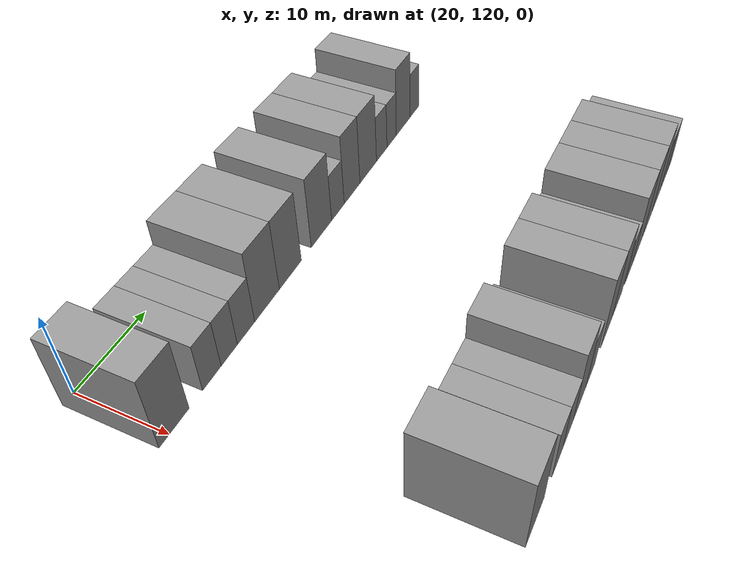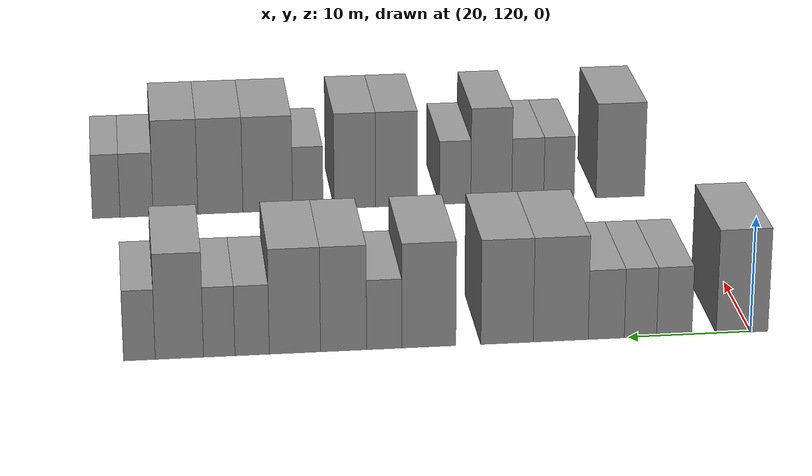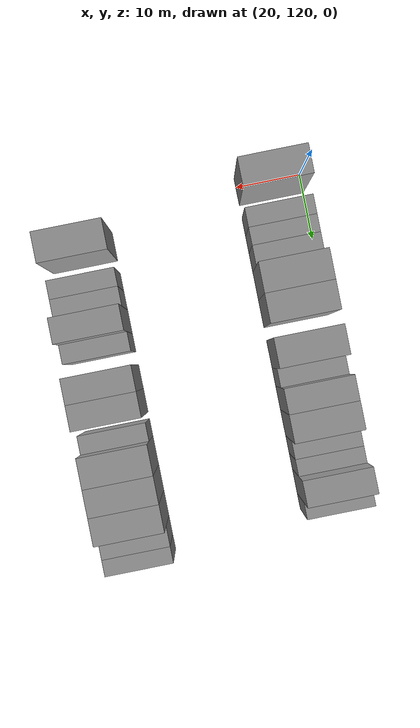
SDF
<sdf version="1.6">
 <world name="default">
  <model name="building_84">
   <static>1</static>
   <pose>25.0000 120.7058 0 0.000000 0.000000 0.000000</pose>
   <link name="link">
    <pose>0 0 4.50 0 0 0</pose>
    <collision name="collision"><geometry><box><size>10.0000 4.2406 9.0000</size></box></geometry></collision>
    <visual name="visual">
     <cast_shadows>0</cast_shadows>
     <geometry><box><size>10.0000 4.2406 9.0000</size></box></geometry>
     <material>
      <script>
       <uri>model://grey_wall/materials/scripts</uri>
       <uri>model://grey_wall/materials/textures</uri>
       <name>vrc/grey_wall</name>
      </script>
     </material>
    </visual>
   </link>
  </model>
  <model name="building_85">
   <static>1</static>
   <pose>25.0000 126.2651 0 0.000000 0.000000 0.000000</pose>
   <link name="link">
    <pose>0 0 3.00 0 0 0</pose>
    <collision name="collision"><geometry><box><size>10.0000 2.8779 6.0000</size></box></geometry></collision>
    <visual name="visual">
     <cast_shadows>0</cast_shadows>
     <geometry><box><size>10.0000 2.8779 6.0000</size></box></geometry>
     <material>
      <script>
       <uri>model://grey_wall/materials/scripts</uri>
       <uri>model://grey_wall/materials/textures</uri>
       <name>vrc/grey_wall</name>
      </script>
     </material>
    </visual>
   </link>
  </model>
  <model name="building_86">
   <static>1</static>
   <pose>25.0000 129.0190 0 0.000000 0.000000 0.000000</pose>
   <link name="link">
    <pose>0 0 3.00 0 0 0</pose>
    <collision name="collision"><geometry><box><size>10.0000 2.6300 6.0000</size></box></geometry></collision>
    <visual name="visual">
     <cast_shadows>0</cast_shadows>
     <geometry><box><size>10.0000 2.6300 6.0000</size></box></geometry>
     <material>
      <script>
       <uri>model://grey_wall/materials/scripts</uri>
       <uri>model://grey_wall/materials/textures</uri>
       <name>vrc/grey_wall</name>
      </script>
     </material>
    </visual>
   </link>
  </model>
  <model name="building_87">
   <static>1</static>
   <pose>25.0000 131.8046 0 0.000000 0.000000 0.000000</pose>
   <link name="link">
    <pose>0 0 3.00 0 0 0</pose>
    <collision name="collision"><geometry><box><size>10.0000 2.9410 6.0000</size></box></geometry></collision>
    <visual name="visual">
     <cast_shadows>0</cast_shadows>
     <geometry><box><size>10.0000 2.9410 6.0000</size></box></geometry>
     <material>
      <script>
       <uri>model://grey_wall/materials/scripts</uri>
       <uri>model://grey_wall/materials/textures</uri>
       <name>vrc/grey_wall</name>
      </script>
     </material>
    </visual>
   </link>
  </model>
  <model name="building_88">
   <static>1</static>
   <pose>25.0000 135.4994 0 0.000000 0.000000 0.000000</pose>
   <link name="link">
    <pose>0 0 4.50 0 0 0</pose>
    <collision name="collision"><geometry><box><size>10.0000 4.4486 9.0000</size></box></geometry></collision>
    <visual name="visual">
     <cast_shadows>0</cast_shadows>
     <geometry><box><size>10.0000 4.4486 9.0000</size></box></geometry>
     <material>
      <script>
       <uri>model://grey_wall/materials/scripts</uri>
       <uri>model://grey_wall/materials/textures</uri>
       <name>vrc/grey_wall</name>
      </script>
     </material>
    </visual>
   </link>
  </model>
  <model name="building_89">
   <static>1</static>
   <pose>25.0000 139.8428 0 0.000000 0.000000 0.000000</pose>
   <link name="link">
    <pose>0 0 4.50 0 0 0</pose>
    <collision name="collision"><geometry><box><size>10.0000 4.2383 9.0000</size></box></geometry></collision>
    <visual name="visual">
     <cast_shadows>0</cast_shadows>
     <geometry><box><size>10.0000 4.2383 9.0000</size></box></geometry>
     <material>
      <script>
       <uri>model://grey_wall/materials/scripts</uri>
       <uri>model://grey_wall/materials/textures</uri>
       <name>vrc/grey_wall</name>
      </script>
     </material>
    </visual>
   </link>
  </model>
  <model name="building_90">
   <static>1</static>
   <pose>25.0000 146.1336 0 0.000000 0.000000 0.000000</pose>
   <link name="link">
    <pose>0 0 4.50 0 0 0</pose>
    <collision name="collision"><geometry><box><size>10.0000 4.3431 9.0000</size></box></geometry></collision>
    <visual name="visual">
     <cast_shadows>0</cast_shadows>
     <geometry><box><size>10.0000 4.3431 9.0000</size></box></geometry>
     <material>
      <script>
       <uri>model://grey_wall/materials/scripts</uri>
       <uri>model://grey_wall/materials/textures</uri>
       <name>vrc/grey_wall</name>
      </script>
     </material>
    </visual>
   </link>
  </model>
  <model name="building_91">
   <static>1</static>
   <pose>25.0000 149.7104 0 0.000000 0.000000 0.000000</pose>
   <link name="link">
    <pose>0 0 3.00 0 0 0</pose>
    <collision name="collision"><geometry><box><size>10.0000 2.8105 6.0000</size></box></geometry></collision>
    <visual name="visual">
     <cast_shadows>0</cast_shadows>
     <geometry><box><size>10.0000 2.8105 6.0000</size></box></geometry>
     <material>
      <script>
       <uri>model://grey_wall/materials/scripts</uri>
       <uri>model://grey_wall/materials/textures</uri>
       <name>vrc/grey_wall</name>
      </script>
     </material>
    </visual>
   </link>
  </model>
  <model name="building_92">
   <static>1</static>
   <pose>25.0000 152.9536 0 0.000000 0.000000 0.000000</pose>
   <link name="link">
    <pose>0 0 4.50 0 0 0</pose>
    <collision name="collision"><geometry><box><size>10.0000 3.6760 9.0000</size></box></geometry></collision>
    <visual name="visual">
     <cast_shadows>0</cast_shadows>
     <geometry><box><size>10.0000 3.6760 9.0000</size></box></geometry>
     <material>
      <script>
       <uri>model://grey_wall/materials/scripts</uri>
       <uri>model://grey_wall/materials/textures</uri>
       <name>vrc/grey_wall</name>
      </script>
     </material>
    </visual>
   </link>
  </model>
  <model name="building_93">
   <static>1</static>
   <pose>25.0000 156.8311 0 0.000000 0.000000 0.000000</pose>
   <link name="link">
    <pose>0 0 4.50 0 0 0</pose>
    <collision name="collision"><geometry><box><size>10.0000 4.0789 9.0000</size></box></geometry></collision>
    <visual name="visual">
     <cast_shadows>0</cast_shadows>
     <geometry><box><size>10.0000 4.0789 9.0000</size></box></geometry>
     <material>
      <script>
       <uri>model://grey_wall/materials/scripts</uri>
       <uri>model://grey_wall/materials/textures</uri>
       <name>vrc/grey_wall</name>
      </script>
     </material>
    </visual>
   </link>
  </model>
  <model name="building_94">
   <static>1</static>
   <pose>25.0000 160.2313 0 0.000000 0.000000 0.000000</pose>
   <link name="link">
    <pose>0 0 3.00 0 0 0</pose>
    <collision name="collision"><geometry><box><size>10.0000 2.7214 6.0000</size></box></geometry></collision>
    <visual name="visual">
     <cast_shadows>0</cast_shadows>
     <geometry><box><size>10.0000 2.7214 6.0000</size></box></geometry>
     <material>
      <script>
       <uri>model://grey_wall/materials/scripts</uri>
       <uri>model://grey_wall/materials/textures</uri>
       <name>vrc/grey_wall</name>
      </script>
     </material>
    </visual>
   </link>
  </model>
  <model name="building_95">
   <static>1</static>
   <pose>25.0000 162.8308 0 0.000000 0.000000 0.000000</pose>
   <link name="link">
    <pose>0 0 3.00 0 0 0</pose>
    <collision name="collision"><geometry><box><size>10.0000 2.4776 6.0000</size></box></geometry></collision>
    <visual name="visual">
     <cast_shadows>0</cast_shadows>
     <geometry><box><size>10.0000 2.4776 6.0000</size></box></geometry>
     <material>
      <script>
       <uri>model://grey_wall/materials/scripts</uri>
       <uri>model://grey_wall/materials/textures</uri>
       <name>vrc/grey_wall</name>
      </script>
     </material>
    </visual>
   </link>
  </model>
  <model name="building_96">
   <static>1</static>
   <pose>25.0000 165.9773 0 0.000000 0.000000 0.000000</pose>
   <link name="link">
    <pose>0 0 4.50 0 0 0</pose>
    <collision name="collision"><geometry><box><size>10.0000 3.8154 9.0000</size></box></geometry></collision>
    <visual name="visual">
     <cast_shadows>0</cast_shadows>
     <geometry><box><size>10.0000 3.8154 9.0000</size></box></geometry>
     <material>
      <script>
       <uri>model://grey_wall/materials/scripts</uri>
       <uri>model://grey_wall/materials/textures</uri>
       <name>vrc/grey_wall</name>
      </script>
     </material>
    </visual>
   </link>
  </model>
  <model name="building_97">
   <static>1</static>
   <pose>25.0000 169.1264 0 0.000000 0.000000 0.000000</pose>
   <link name="link">
    <pose>0 0 3.00 0 0 0</pose>
    <collision name="collision"><geometry><box><size>10.0000 2.4827 6.0000</size></box></geometry></collision>
    <visual name="visual">
     <cast_shadows>0</cast_shadows>
     <geometry><box><size>10.0000 2.4827 6.0000</size></box></geometry>
     <material>
      <script>
       <uri>model://grey_wall/materials/scripts</uri>
       <uri>model://grey_wall/materials/textures</uri>
       <name>vrc/grey_wall</name>
      </script>
     </material>
    </visual>
   </link>
  </model>
  <model name="building_188">
   <static>1</static>
   <pose>55.0000 125.2602 0 0.000000 0.000000 0.000000</pose>
   <link name="link">
    <pose>0 0 4.50 0 0 0</pose>
    <collision name="collision"><geometry><box><size>10.0000 4.4262 9.0000</size></box></geometry></collision>
    <visual name="visual">
     <cast_shadows>0</cast_shadows>
     <geometry><box><size>10.0000 4.4262 9.0000</size></box></geometry>
     <material>
      <script>
       <uri>model://grey_wall/materials/scripts</uri>
       <uri>model://grey_wall/materials/textures</uri>
       <name>vrc/grey_wall</name>
      </script>
     </material>
    </visual>
   </link>
  </model>
  <model name="building_189">
   <static>1</static>
   <pose>55.0000 130.8544 0 0.000000 0.000000 0.000000</pose>
   <link name="link">
    <pose>0 0 3.00 0 0 0</pose>
    <collision name="collision"><geometry><box><size>10.0000 2.7620 6.0000</size></box></geometry></collision>
    <visual name="visual">
     <cast_shadows>0</cast_shadows>
     <geometry><box><size>10.0000 2.7620 6.0000</size></box></geometry>
     <material>
      <script>
       <uri>model://grey_wall/materials/scripts</uri>
       <uri>model://grey_wall/materials/textures</uri>
       <name>vrc/grey_wall</name>
      </script>
     </material>
    </visual>
   </link>
  </model>
  <model name="building_190">
   <static>1</static>
   <pose>55.0000 133.6897 0 0.000000 0.000000 0.000000</pose>
   <link name="link">
    <pose>0 0 3.00 0 0 0</pose>
    <collision name="collision"><geometry><box><size>10.0000 2.9087 6.0000</size></box></geometry></collision>
    <visual name="visual">
     <cast_shadows>0</cast_shadows>
     <geometry><box><size>10.0000 2.9087 6.0000</size></box></geometry>
     <material>
      <script>
       <uri>model://grey_wall/materials/scripts</uri>
       <uri>model://grey_wall/materials/textures</uri>
       <name>vrc/grey_wall</name>
      </script>
     </material>
    </visual>
   </link>
  </model>
  <model name="building_191">
   <static>1</static>
   <pose>55.0000 137.0020 0 0.000000 0.000000 0.000000</pose>
   <link name="link">
    <pose>0 0 4.50 0 0 0</pose>
    <collision name="collision"><geometry><box><size>10.0000 3.7158 9.0000</size></box></geometry></collision>
    <visual name="visual">
     <cast_shadows>0</cast_shadows>
     <geometry><box><size>10.0000 3.7158 9.0000</size></box></geometry>
     <material>
      <script>
       <uri>model://grey_wall/materials/scripts</uri>
       <uri>model://grey_wall/materials/textures</uri>
       <name>vrc/grey_wall</name>
      </script>
     </material>
    </visual>
   </link>
  </model>
  <model name="building_192">
   <static>1</static>
   <pose>55.0000 140.2841 0 0.000000 0.000000 0.000000</pose>
   <link name="link">
    <pose>0 0 3.00 0 0 0</pose>
    <collision name="collision"><geometry><box><size>10.0000 2.8484 6.0000</size></box></geometry></collision>
    <visual name="visual">
     <cast_shadows>0</cast_shadows>
     <geometry><box><size>10.0000 2.8484 6.0000</size></box></geometry>
     <material>
      <script>
       <uri>model://grey_wall/materials/scripts</uri>
       <uri>model://grey_wall/materials/textures</uri>
       <name>vrc/grey_wall</name>
      </script>
     </material>
    </visual>
   </link>
  </model>
  <model name="building_193">
   <static>1</static>
   <pose>55.0000 145.5821 0 0.000000 0.000000 0.000000</pose>
   <link name="link">
    <pose>0 0 4.50 0 0 0</pose>
    <collision name="collision"><geometry><box><size>10.0000 3.7476 9.0000</size></box></geometry></collision>
    <visual name="visual">
     <cast_shadows>0</cast_shadows>
     <geometry><box><size>10.0000 3.7476 9.0000</size></box></geometry>
     <material>
      <script>
       <uri>model://grey_wall/materials/scripts</uri>
       <uri>model://grey_wall/materials/textures</uri>
       <name>vrc/grey_wall</name>
      </script>
     </material>
    </visual>
   </link>
  </model>
  <model name="building_194">
   <static>1</static>
   <pose>55.0000 149.3116 0 0.000000 0.000000 0.000000</pose>
   <link name="link">
    <pose>0 0 4.50 0 0 0</pose>
    <collision name="collision"><geometry><box><size>10.0000 3.7114 9.0000</size></box></geometry></collision>
    <visual name="visual">
     <cast_shadows>0</cast_shadows>
     <geometry><box><size>10.0000 3.7114 9.0000</size></box></geometry>
     <material>
      <script>
       <uri>model://grey_wall/materials/scripts</uri>
       <uri>model://grey_wall/materials/textures</uri>
       <name>vrc/grey_wall</name>
      </script>
     </material>
    </visual>
   </link>
  </model>
  <model name="building_195">
   <static>1</static>
   <pose>55.0000 153.5320 0 0.000000 0.000000 0.000000</pose>
   <link name="link">
    <pose>0 0 3.00 0 0 0</pose>
    <collision name="collision"><geometry><box><size>10.0000 2.7294 6.0000</size></box></geometry></collision>
    <visual name="visual">
     <cast_shadows>0</cast_shadows>
     <geometry><box><size>10.0000 2.7294 6.0000</size></box></geometry>
     <material>
      <script>
       <uri>model://grey_wall/materials/scripts</uri>
       <uri>model://grey_wall/materials/textures</uri>
       <name>vrc/grey_wall</name>
      </script>
     </material>
    </visual>
   </link>
  </model>
  <model name="building_196">
   <static>1</static>
   <pose>55.0000 157.1135 0 0.000000 0.000000 0.000000</pose>
   <link name="link">
    <pose>0 0 4.50 0 0 0</pose>
    <collision name="collision"><geometry><box><size>10.0000 4.4336 9.0000</size></box></geometry></collision>
    <visual name="visual">
     <cast_shadows>0</cast_shadows>
     <geometry><box><size>10.0000 4.4336 9.0000</size></box></geometry>
     <material>
      <script>
       <uri>model://grey_wall/materials/scripts</uri>
       <uri>model://grey_wall/materials/textures</uri>
       <name>vrc/grey_wall</name>
      </script>
     </material>
    </visual>
   </link>
  </model>
  <model name="building_197">
   <static>1</static>
   <pose>55.0000 161.3363 0 0.000000 0.000000 0.000000</pose>
   <link name="link">
    <pose>0 0 4.50 0 0 0</pose>
    <collision name="collision"><geometry><box><size>10.0000 4.0120 9.0000</size></box></geometry></collision>
    <visual name="visual">
     <cast_shadows>0</cast_shadows>
     <geometry><box><size>10.0000 4.0120 9.0000</size></box></geometry>
     <material>
      <script>
       <uri>model://grey_wall/materials/scripts</uri>
       <uri>model://grey_wall/materials/textures</uri>
       <name>vrc/grey_wall</name>
      </script>
     </material>
    </visual>
   </link>
  </model>
  <model name="building_198">
   <static>1</static>
   <pose>55.0000 165.3292 0 0.000000 0.000000 0.000000</pose>
   <link name="link">
    <pose>0 0 4.50 0 0 0</pose>
    <collision name="collision"><geometry><box><size>10.0000 3.9739 9.0000</size></box></geometry></collision>
    <visual name="visual">
     <cast_shadows>0</cast_shadows>
     <geometry><box><size>10.0000 3.9739 9.0000</size></box></geometry>
     <material>
      <script>
       <uri>model://grey_wall/materials/scripts</uri>
       <uri>model://grey_wall/materials/textures</uri>
       <name>vrc/grey_wall</name>
      </script>
     </material>
    </visual>
   </link>
  </model>
  <model name="building_199">
   <static>1</static>
   <pose>55.0000 168.7745 0 0.000000 0.000000 0.000000</pose>
   <link name="link">
    <pose>0 0 3.00 0 0 0</pose>
    <collision name="collision"><geometry><box><size>10.0000 2.9167 6.0000</size></box></geometry></collision>
    <visual name="visual">
     <cast_shadows>0</cast_shadows>
     <geometry><box><size>10.0000 2.9167 6.0000</size></box></geometry>
     <material>
      <script>
       <uri>model://grey_wall/materials/scripts</uri>
       <uri>model://grey_wall/materials/textures</uri>
       <name>vrc/grey_wall</name>
      </script>
     </material>
    </visual>
   </link>
  </model>
  <model name="building_200">
   <static>1</static>
   <pose>55.0000 171.4478 0 0.000000 0.000000 0.000000</pose>
   <link name="link">
    <pose>0 0 3.00 0 0 0</pose>
    <collision name="collision"><geometry><box><size>10.0000 2.4299 6.0000</size></box></geometry></collision>
    <visual name="visual">
     <cast_shadows>0</cast_shadows>
     <geometry><box><size>10.0000 2.4299 6.0000</size></box></geometry>
     <material>
      <script>
       <uri>model://grey_wall/materials/scripts</uri>
       <uri>model://grey_wall/materials/textures</uri>
       <name>vrc/grey_wall</name>
      </script>
     </material>
    </visual>
   </link>
  </model>
 </world>
</sdf>
